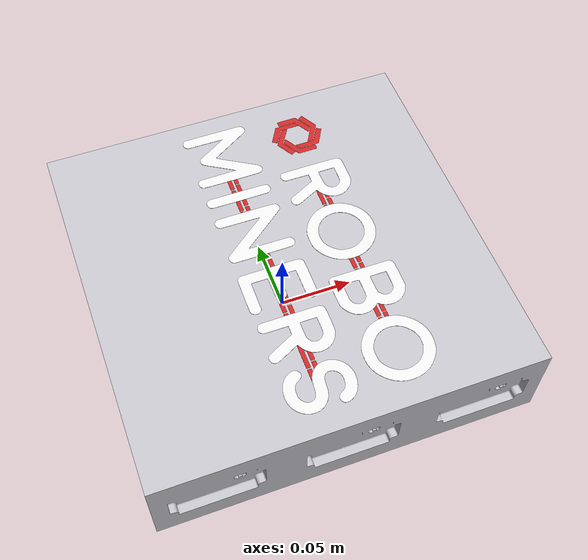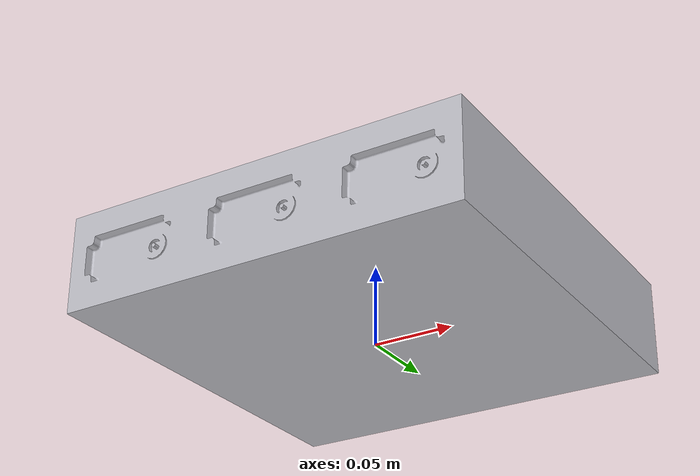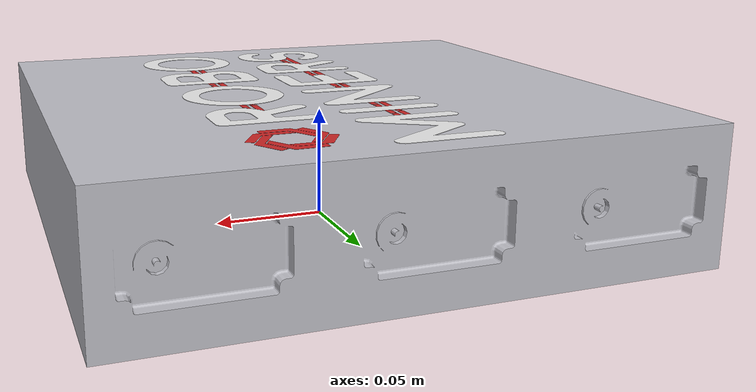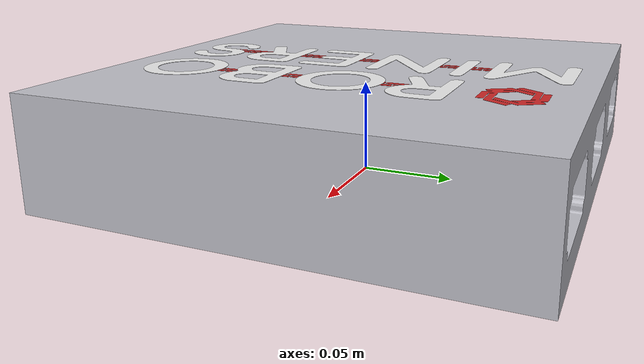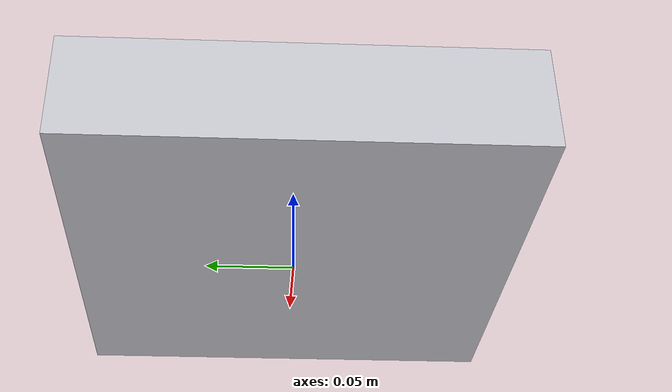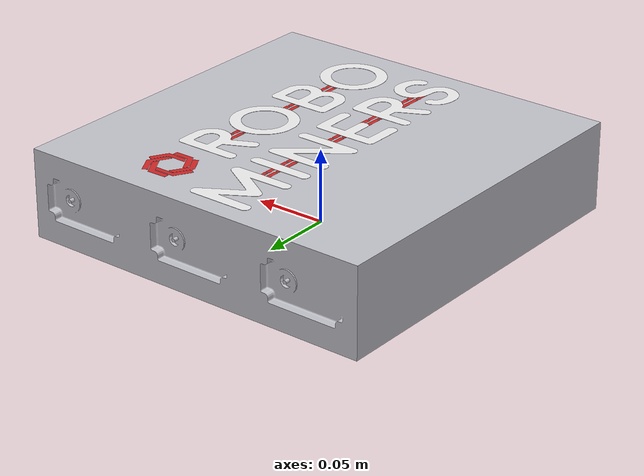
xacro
<?xml version="1.0" ?>
<robot name="cuerpo" xmlns:xacro="http://www.ros.org/wiki/xacro">

<link name="cuerpo">
  <inertial>
	<origin rpy="0 0 0" xyz="1.2607010642475455e-06 -1.9705023201073385e-17 0.030000000000039998"/>
	<!--mass value="28.985638173838137"/-->
	<mass value="10"/>
	<!--mass value="2"/-->
	<inertia ixx="0.155393" ixy="-0.0" ixz="-0.0" iyy="0.159826" iyz="-0.0" izz="0.297615"/>
  </inertial>
  <visual>
	<origin rpy="0 0 0" xyz="0 0 0"/>
	<geometry>
	  <mesh filename="package://robominer_description/meshes/cuerpo.stl" scale="0.001 0.001 0.001"/>
	</geometry>
	<material name="silver"/>
  </visual>
  <collision>
	<origin rpy="0 0 0" xyz="0 0 0"/>
	<geometry>
	  <mesh filename="package://robominer_description/meshes/cuerpo.stl" scale="0.001 0.001 0.001"/>
	</geometry>
  </collision>
</link>

<link name="logo1">
  <visual>
    <origin rpy="0 0 0" xyz="0 0 0"/>
    <geometry>
      <mesh filename="package://robominer_description/meshes/logo1.stl" scale="0.001 0.001 0.001"/>
    </geometry>
    <material name="logored"/>
  </visual>
</link>

<link name="logo2">
  <visual>
    <origin rpy="0 0 0" xyz="0 0 0"/>
    <geometry>
      <mesh filename="package://robominer_description/meshes/logo2.stl" scale="0.001 0.001 0.001"/>
    </geometry>
    <material name="white"/>
  </visual>
</link>

<link name="ladrilloslogo">
  <visual>
    <origin rpy="0 0 0" xyz="0 0 0"/>
    <geometry>
      <mesh filename="package://robominer_description/meshes/ladrilloslogo.stl" scale="0.001 0.001 0.001"/>
    </geometry>
    <material name="logored"/>
  </visual>
</link>

<joint name="cuerpo_logo1" type="fixed">
	<origin rpy="0 0 0.5236" xyz="-0.006 0.105 0.0551"/>
	<parent link="cuerpo"/>
	<child link="logo1"/>
</joint>

<joint name="cuerpo_logo2" type="fixed">
	<origin rpy="0 0 -1.5707" xyz="0.08 0.125 0.0552"/>
	<parent link="cuerpo"/>
	<child link="logo2"/>
</joint>

<joint name="cuerpo_ladrillos" type="fixed">
	<origin rpy="0 0 -1.5707" xyz="0.08 0.125 0.0551"/>
	<parent link="cuerpo"/>
	<child link="ladrilloslogo"/>
</joint>

<xacro:macro name="body" params="parent child">
	<joint name="fixed" type="fixed">
		<origin rpy="0 0 0" xyz="0 0 0.1"/>
		<parent link="${parent}"/>
		<child link="${child}"/>
	</joint>
</xacro:macro>

</robot>
